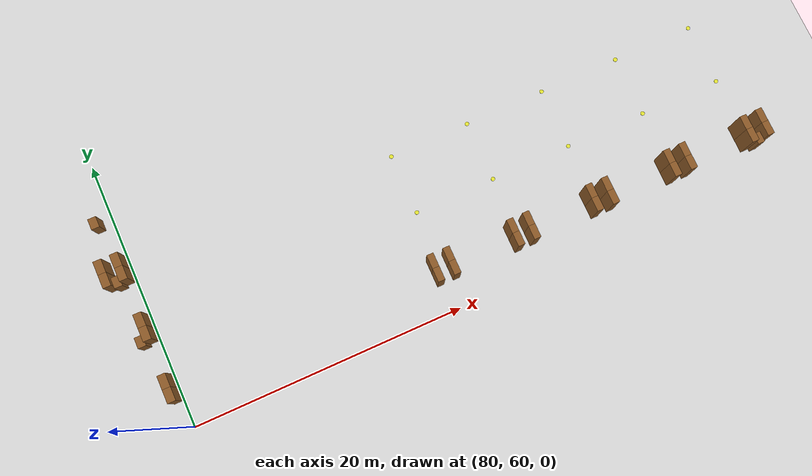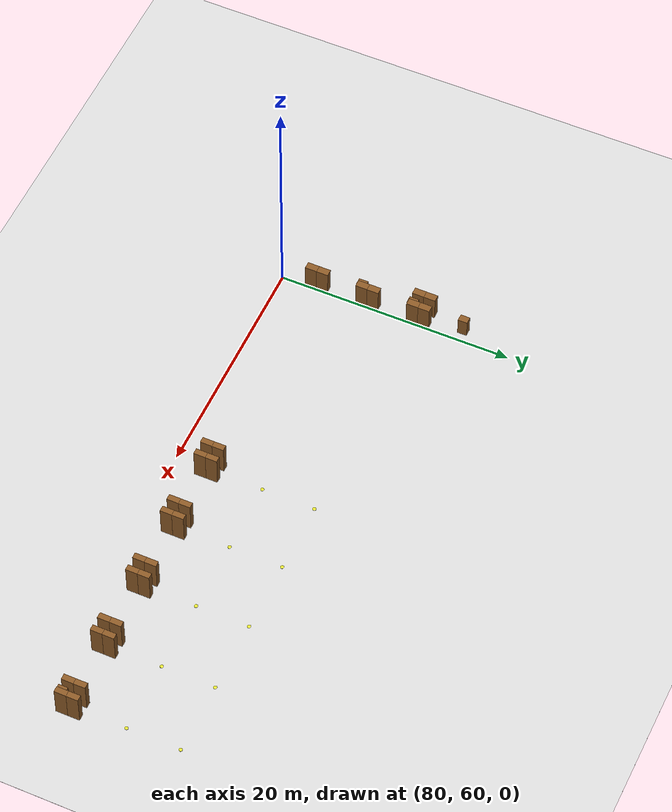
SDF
<sdf version="1.9">
 <world name="realistic_warehouse_150x200m">
  <model name="ground_plane">
   <static>true</static>
   <pose>68.5 102.0 0 0 0 0</pose>
   <link name="ground_link">
    <visual name="ground_visual">
     <geometry><box><size>127.0 194.0 0.01</size></box></geometry>
     <material><ambient>0.85 0.85 0.85 1.0</ambient><diffuse>0.85 0.85 0.85 1.0</diffuse></material>
    </visual>
    <collision name="ground_visual_collision">
     <geometry><box><size>127.0 194.0 0.01</size></box></geometry>
    </collision>
    <collision name="ground_collision">
     <geometry><plane><normal>0 0 1</normal><size>127.0 194.0</size></plane></geometry>
    </collision>
   </link>
  </model>
  <model name="rack_Zone_H_A4_S0_1401">
   <static>true</static>
   <pose>79.6 62.5 1.1 0 0 0</pose>
   <link name="rack_Zone_H_A4_S0_1401_link">
    <visual name="rack_Zone_H_A4_S0_1401_vis">
     <geometry><box><size>0.6 1.0 2.2</size></box></geometry>
     <material><ambient>0.55 0.35 0.15 1.0</ambient><diffuse>0.55 0.35 0.15 1.0</diffuse></material>
    </visual>
    <collision name="rack_Zone_H_A4_S0_1401_vis_collision">
     <geometry><box><size>0.6 1.0 2.2</size></box></geometry>
    </collision>
   </link>
  </model>
  <model name="rack_Zone_H_A4_S0_1402">
   <static>true</static>
   <pose>79.6 63.5 1.1 0 0 0</pose>
   <link name="rack_Zone_H_A4_S0_1402_link">
    <visual name="rack_Zone_H_A4_S0_1402_vis">
     <geometry><box><size>0.6 1.0 2.2</size></box></geometry>
     <material><ambient>0.55 0.35 0.15 1.0</ambient><diffuse>0.55 0.35 0.15 1.0</diffuse></material>
    </visual>
    <collision name="rack_Zone_H_A4_S0_1402_vis_collision">
     <geometry><box><size>0.6 1.0 2.2</size></box></geometry>
    </collision>
   </link>
  </model>
  <model name="rack_Zone_H_A4_S1_1406">
   <static>true</static>
   <pose>79.6 67.0 1.1 0 0 0</pose>
   <link name="rack_Zone_H_A4_S1_1406_link">
    <visual name="rack_Zone_H_A4_S1_1406_vis">
     <geometry><box><size>0.6 1.0 2.2</size></box></geometry>
     <material><ambient>0.55 0.35 0.15 1.0</ambient><diffuse>0.55 0.35 0.15 1.0</diffuse></material>
    </visual>
    <collision name="rack_Zone_H_A4_S1_1406_vis_collision">
     <geometry><box><size>0.6 1.0 2.2</size></box></geometry>
    </collision>
   </link>
  </model>
  <model name="rack_Zone_H_A4_S1_1407">
   <static>true</static>
   <pose>79.6 68.0 1.1 0 0 0</pose>
   <link name="rack_Zone_H_A4_S1_1407_link">
    <visual name="rack_Zone_H_A4_S1_1407_vis">
     <geometry><box><size>0.6 1.0 2.2</size></box></geometry>
     <material><ambient>0.55 0.35 0.15 1.0</ambient><diffuse>0.55 0.35 0.15 1.0</diffuse></material>
    </visual>
    <collision name="rack_Zone_H_A4_S1_1407_vis_collision">
     <geometry><box><size>0.6 1.0 2.2</size></box></geometry>
    </collision>
   </link>
  </model>
  <model name="rack_Zone_H_A4_S1_1408">
   <static>true</static>
   <pose>79.0 66.7 0.8250000000000001 0 0 0</pose>
   <link name="rack_Zone_H_A4_S1_1408_link">
    <visual name="rack_Zone_H_A4_S1_1408_vis">
     <geometry><box><size>0.6 0.8 1.6500000000000001</size></box></geometry>
     <material><ambient>0.55 0.35 0.15 1.0</ambient><diffuse>0.55 0.35 0.15 1.0</diffuse></material>
    </visual>
    <collision name="rack_Zone_H_A4_S1_1408_vis_collision">
     <geometry><box><size>0.6 0.8 1.6500000000000001</size></box></geometry>
    </collision>
   </link>
  </model>
  <model name="rack_Zone_H_A4_S2_1409">
   <static>true</static>
   <pose>78.4 71.5 1.1 0 0 0</pose>
   <link name="rack_Zone_H_A4_S2_1409_link">
    <visual name="rack_Zone_H_A4_S2_1409_vis">
     <geometry><box><size>0.6 1.0 2.2</size></box></geometry>
     <material><ambient>0.55 0.35 0.15 1.0</ambient><diffuse>0.55 0.35 0.15 1.0</diffuse></material>
    </visual>
    <collision name="rack_Zone_H_A4_S2_1409_vis_collision">
     <geometry><box><size>0.6 1.0 2.2</size></box></geometry>
    </collision>
   </link>
  </model>
  <model name="rack_Zone_H_A4_S2_1410">
   <static>true</static>
   <pose>78.4 72.5 1.1 0 0 0</pose>
   <link name="rack_Zone_H_A4_S2_1410_link">
    <visual name="rack_Zone_H_A4_S2_1410_vis">
     <geometry><box><size>0.6 1.0 2.2</size></box></geometry>
     <material><ambient>0.55 0.35 0.15 1.0</ambient><diffuse>0.55 0.35 0.15 1.0</diffuse></material>
    </visual>
    <collision name="rack_Zone_H_A4_S2_1410_vis_collision">
     <geometry><box><size>0.6 1.0 2.2</size></box></geometry>
    </collision>
   </link>
  </model>
  <model name="rack_Zone_H_A4_S2_1411">
   <static>true</static>
   <pose>79.6 71.5 1.1 0 0 0</pose>
   <link name="rack_Zone_H_A4_S2_1411_link">
    <visual name="rack_Zone_H_A4_S2_1411_vis">
     <geometry><box><size>0.6 1.0 2.2</size></box></geometry>
     <material><ambient>0.55 0.35 0.15 1.0</ambient><diffuse>0.55 0.35 0.15 1.0</diffuse></material>
    </visual>
    <collision name="rack_Zone_H_A4_S2_1411_vis_collision">
     <geometry><box><size>0.6 1.0 2.2</size></box></geometry>
    </collision>
   </link>
  </model>
  <model name="rack_Zone_H_A4_S2_1412">
   <static>true</static>
   <pose>79.6 72.5 1.1 0 0 0</pose>
   <link name="rack_Zone_H_A4_S2_1412_link">
    <visual name="rack_Zone_H_A4_S2_1412_vis">
     <geometry><box><size>0.6 1.0 2.2</size></box></geometry>
     <material><ambient>0.55 0.35 0.15 1.0</ambient><diffuse>0.55 0.35 0.15 1.0</diffuse></material>
    </visual>
    <collision name="rack_Zone_H_A4_S2_1412_vis_collision">
     <geometry><box><size>0.6 1.0 2.2</size></box></geometry>
    </collision>
   </link>
  </model>
  <model name="rack_Zone_H_A4_S2_1413">
   <static>true</static>
   <pose>79.0 71.2 0.8250000000000001 0 0 0</pose>
   <link name="rack_Zone_H_A4_S2_1413_link">
    <visual name="rack_Zone_H_A4_S2_1413_vis">
     <geometry><box><size>0.6 0.8 1.6500000000000001</size></box></geometry>
     <material><ambient>0.55 0.35 0.15 1.0</ambient><diffuse>0.55 0.35 0.15 1.0</diffuse></material>
    </visual>
    <collision name="rack_Zone_H_A4_S2_1413_vis_collision">
     <geometry><box><size>0.6 0.8 1.6500000000000001</size></box></geometry>
    </collision>
   </link>
  </model>
  <model name="rack_Zone_H_A4_S3_1418">
   <static>true</static>
   <pose>79.0 75.7 0.8250000000000001 0 0 0</pose>
   <link name="rack_Zone_H_A4_S3_1418_link">
    <visual name="rack_Zone_H_A4_S3_1418_vis">
     <geometry><box><size>0.6 0.8 1.6500000000000001</size></box></geometry>
     <material><ambient>0.55 0.35 0.15 1.0</ambient><diffuse>0.55 0.35 0.15 1.0</diffuse></material>
    </visual>
    <collision name="rack_Zone_H_A4_S3_1418_vis_collision">
     <geometry><box><size>0.6 0.8 1.6500000000000001</size></box></geometry>
    </collision>
   </link>
  </model>
  <model name="rack_Zone_I_A0_S0_1448">
   <static>true</static>
   <pose>99.4 62.5 1.4 0 0 0</pose>
   <link name="rack_Zone_I_A0_S0_1448_link">
    <visual name="rack_Zone_I_A0_S0_1448_vis">
     <geometry><box><size>0.5 1.0 2.8</size></box></geometry>
     <material><ambient>0.55 0.35 0.15 1.0</ambient><diffuse>0.55 0.35 0.15 1.0</diffuse></material>
    </visual>
    <collision name="rack_Zone_I_A0_S0_1448_vis_collision">
     <geometry><box><size>0.5 1.0 2.8</size></box></geometry>
    </collision>
   </link>
  </model>
  <model name="rack_Zone_I_A0_S0_1449">
   <static>true</static>
   <pose>99.4 63.5 1.4 0 0 0</pose>
   <link name="rack_Zone_I_A0_S0_1449_link">
    <visual name="rack_Zone_I_A0_S0_1449_vis">
     <geometry><box><size>0.5 1.0 2.8</size></box></geometry>
     <material><ambient>0.55 0.35 0.15 1.0</ambient><diffuse>0.55 0.35 0.15 1.0</diffuse></material>
    </visual>
    <collision name="rack_Zone_I_A0_S0_1449_vis_collision">
     <geometry><box><size>0.5 1.0 2.8</size></box></geometry>
    </collision>
   </link>
  </model>
  <model name="rack_Zone_I_A0_S0_1450">
   <static>true</static>
   <pose>100.6 62.5 1.4 0 0 0</pose>
   <link name="rack_Zone_I_A0_S0_1450_link">
    <visual name="rack_Zone_I_A0_S0_1450_vis">
     <geometry><box><size>0.5 1.0 2.8</size></box></geometry>
     <material><ambient>0.55 0.35 0.15 1.0</ambient><diffuse>0.55 0.35 0.15 1.0</diffuse></material>
    </visual>
    <collision name="rack_Zone_I_A0_S0_1450_vis_collision">
     <geometry><box><size>0.5 1.0 2.8</size></box></geometry>
    </collision>
   </link>
  </model>
  <model name="rack_Zone_I_A0_S0_1451">
   <static>true</static>
   <pose>100.6 63.5 1.4 0 0 0</pose>
   <link name="rack_Zone_I_A0_S0_1451_link">
    <visual name="rack_Zone_I_A0_S0_1451_vis">
     <geometry><box><size>0.5 1.0 2.8</size></box></geometry>
     <material><ambient>0.55 0.35 0.15 1.0</ambient><diffuse>0.55 0.35 0.15 1.0</diffuse></material>
    </visual>
    <collision name="rack_Zone_I_A0_S0_1451_vis_collision">
     <geometry><box><size>0.5 1.0 2.8</size></box></geometry>
    </collision>
   </link>
  </model>
  <model name="cross_Zone_I_A0_S1_1453">
   <static>true</static>
   <pose>100.0 67.5 0.01 0 0 0</pose>
   <link name="cross_Zone_I_A0_S1_1453_link">
    <visual name="cross_Zone_I_A0_S1_1453_vis">
     <geometry><cylinder><radius>0.15</radius><length>0.02</length></cylinder></geometry>
     <material><ambient>0.9 0.9 0.2 1.0</ambient><diffuse>0.9 0.9 0.2 1.0</diffuse></material>
    </visual>
    <collision name="cross_Zone_I_A0_S1_1453_vis_collision">
     <geometry><cylinder><radius>0.15</radius><length>0.02</length></cylinder></geometry>
    </collision>
   </link>
  </model>
  <model name="gap_Zone_I_A0_S2_1454">
   <static>true</static>
   <pose>100.0 72.0 0.01 0 0 0</pose>
   <link name="gap_Zone_I_A0_S2_1454_link">
    <visual name="gap_Zone_I_A0_S2_1454_vis">
     <geometry><cylinder><radius>0.15</radius><length>0.02</length></cylinder></geometry>
     <material><ambient>0.9 0.9 0.2 1.0</ambient><diffuse>0.9 0.9 0.2 1.0</diffuse></material>
    </visual>
    <collision name="gap_Zone_I_A0_S2_1454_vis_collision">
     <geometry><cylinder><radius>0.15</radius><length>0.02</length></cylinder></geometry>
    </collision>
   </link>
  </model>
  <model name="rack_Zone_I_A1_S0_1468">
   <static>true</static>
   <pose>105.4 62.5 1.4 0 0 0</pose>
   <link name="rack_Zone_I_A1_S0_1468_link">
    <visual name="rack_Zone_I_A1_S0_1468_vis">
     <geometry><box><size>0.5 1.0 2.8</size></box></geometry>
     <material><ambient>0.55 0.35 0.15 1.0</ambient><diffuse>0.55 0.35 0.15 1.0</diffuse></material>
    </visual>
    <collision name="rack_Zone_I_A1_S0_1468_vis_collision">
     <geometry><box><size>0.5 1.0 2.8</size></box></geometry>
    </collision>
   </link>
  </model>
  <model name="rack_Zone_I_A1_S0_1469">
   <static>true</static>
   <pose>105.4 63.5 1.4 0 0 0</pose>
   <link name="rack_Zone_I_A1_S0_1469_link">
    <visual name="rack_Zone_I_A1_S0_1469_vis">
     <geometry><box><size>0.5 1.0 2.8</size></box></geometry>
     <material><ambient>0.55 0.35 0.15 1.0</ambient><diffuse>0.55 0.35 0.15 1.0</diffuse></material>
    </visual>
    <collision name="rack_Zone_I_A1_S0_1469_vis_collision">
     <geometry><box><size>0.5 1.0 2.8</size></box></geometry>
    </collision>
   </link>
  </model>
  <model name="rack_Zone_I_A1_S0_1470">
   <static>true</static>
   <pose>106.6 62.5 1.4 0 0 0</pose>
   <link name="rack_Zone_I_A1_S0_1470_link">
    <visual name="rack_Zone_I_A1_S0_1470_vis">
     <geometry><box><size>0.5 1.0 2.8</size></box></geometry>
     <material><ambient>0.55 0.35 0.15 1.0</ambient><diffuse>0.55 0.35 0.15 1.0</diffuse></material>
    </visual>
    <collision name="rack_Zone_I_A1_S0_1470_vis_collision">
     <geometry><box><size>0.5 1.0 2.8</size></box></geometry>
    </collision>
   </link>
  </model>
  <model name="rack_Zone_I_A1_S0_1471">
   <static>true</static>
   <pose>106.6 63.5 1.4 0 0 0</pose>
   <link name="rack_Zone_I_A1_S0_1471_link">
    <visual name="rack_Zone_I_A1_S0_1471_vis">
     <geometry><box><size>0.5 1.0 2.8</size></box></geometry>
     <material><ambient>0.55 0.35 0.15 1.0</ambient><diffuse>0.55 0.35 0.15 1.0</diffuse></material>
    </visual>
    <collision name="rack_Zone_I_A1_S0_1471_vis_collision">
     <geometry><box><size>0.5 1.0 2.8</size></box></geometry>
    </collision>
   </link>
  </model>
  <model name="cross_Zone_I_A1_S1_1473">
   <static>true</static>
   <pose>106.0 67.5 0.01 0 0 0</pose>
   <link name="cross_Zone_I_A1_S1_1473_link">
    <visual name="cross_Zone_I_A1_S1_1473_vis">
     <geometry><cylinder><radius>0.15</radius><length>0.02</length></cylinder></geometry>
     <material><ambient>0.9 0.9 0.2 1.0</ambient><diffuse>0.9 0.9 0.2 1.0</diffuse></material>
    </visual>
    <collision name="cross_Zone_I_A1_S1_1473_vis_collision">
     <geometry><cylinder><radius>0.15</radius><length>0.02</length></cylinder></geometry>
    </collision>
   </link>
  </model>
  <model name="gap_Zone_I_A1_S2_1474">
   <static>true</static>
   <pose>106.0 72.0 0.01 0 0 0</pose>
   <link name="gap_Zone_I_A1_S2_1474_link">
    <visual name="gap_Zone_I_A1_S2_1474_vis">
     <geometry><cylinder><radius>0.15</radius><length>0.02</length></cylinder></geometry>
     <material><ambient>0.9 0.9 0.2 1.0</ambient><diffuse>0.9 0.9 0.2 1.0</diffuse></material>
    </visual>
    <collision name="gap_Zone_I_A1_S2_1474_vis_collision">
     <geometry><cylinder><radius>0.15</radius><length>0.02</length></cylinder></geometry>
    </collision>
   </link>
  </model>
  <model name="rack_Zone_I_A2_S0_1488">
   <static>true</static>
   <pose>111.4 62.5 1.4 0 0 0</pose>
   <link name="rack_Zone_I_A2_S0_1488_link">
    <visual name="rack_Zone_I_A2_S0_1488_vis">
     <geometry><box><size>0.5 1.0 2.8</size></box></geometry>
     <material><ambient>0.55 0.35 0.15 1.0</ambient><diffuse>0.55 0.35 0.15 1.0</diffuse></material>
    </visual>
    <collision name="rack_Zone_I_A2_S0_1488_vis_collision">
     <geometry><box><size>0.5 1.0 2.8</size></box></geometry>
    </collision>
   </link>
  </model>
  <model name="rack_Zone_I_A2_S0_1489">
   <static>true</static>
   <pose>111.4 63.5 1.4 0 0 0</pose>
   <link name="rack_Zone_I_A2_S0_1489_link">
    <visual name="rack_Zone_I_A2_S0_1489_vis">
     <geometry><box><size>0.5 1.0 2.8</size></box></geometry>
     <material><ambient>0.55 0.35 0.15 1.0</ambient><diffuse>0.55 0.35 0.15 1.0</diffuse></material>
    </visual>
    <collision name="rack_Zone_I_A2_S0_1489_vis_collision">
     <geometry><box><size>0.5 1.0 2.8</size></box></geometry>
    </collision>
   </link>
  </model>
  <model name="rack_Zone_I_A2_S0_1490">
   <static>true</static>
   <pose>112.6 62.5 1.4 0 0 0</pose>
   <link name="rack_Zone_I_A2_S0_1490_link">
    <visual name="rack_Zone_I_A2_S0_1490_vis">
     <geometry><box><size>0.5 1.0 2.8</size></box></geometry>
     <material><ambient>0.55 0.35 0.15 1.0</ambient><diffuse>0.55 0.35 0.15 1.0</diffuse></material>
    </visual>
    <collision name="rack_Zone_I_A2_S0_1490_vis_collision">
     <geometry><box><size>0.5 1.0 2.8</size></box></geometry>
    </collision>
   </link>
  </model>
  <model name="rack_Zone_I_A2_S0_1491">
   <static>true</static>
   <pose>112.6 63.5 1.4 0 0 0</pose>
   <link name="rack_Zone_I_A2_S0_1491_link">
    <visual name="rack_Zone_I_A2_S0_1491_vis">
     <geometry><box><size>0.5 1.0 2.8</size></box></geometry>
     <material><ambient>0.55 0.35 0.15 1.0</ambient><diffuse>0.55 0.35 0.15 1.0</diffuse></material>
    </visual>
    <collision name="rack_Zone_I_A2_S0_1491_vis_collision">
     <geometry><box><size>0.5 1.0 2.8</size></box></geometry>
    </collision>
   </link>
  </model>
  <model name="cross_Zone_I_A2_S1_1493">
   <static>true</static>
   <pose>112.0 67.5 0.01 0 0 0</pose>
   <link name="cross_Zone_I_A2_S1_1493_link">
    <visual name="cross_Zone_I_A2_S1_1493_vis">
     <geometry><cylinder><radius>0.15</radius><length>0.02</length></cylinder></geometry>
     <material><ambient>0.9 0.9 0.2 1.0</ambient><diffuse>0.9 0.9 0.2 1.0</diffuse></material>
    </visual>
    <collision name="cross_Zone_I_A2_S1_1493_vis_collision">
     <geometry><cylinder><radius>0.15</radius><length>0.02</length></cylinder></geometry>
    </collision>
   </link>
  </model>
  <model name="gap_Zone_I_A2_S2_1494">
   <static>true</static>
   <pose>112.0 72.0 0.01 0 0 0</pose>
   <link name="gap_Zone_I_A2_S2_1494_link">
    <visual name="gap_Zone_I_A2_S2_1494_vis">
     <geometry><cylinder><radius>0.15</radius><length>0.02</length></cylinder></geometry>
     <material><ambient>0.9 0.9 0.2 1.0</ambient><diffuse>0.9 0.9 0.2 1.0</diffuse></material>
    </visual>
    <collision name="gap_Zone_I_A2_S2_1494_vis_collision">
     <geometry><cylinder><radius>0.15</radius><length>0.02</length></cylinder></geometry>
    </collision>
   </link>
  </model>
  <model name="rack_Zone_I_A3_S0_1508">
   <static>true</static>
   <pose>117.4 62.5 1.4 0 0 0</pose>
   <link name="rack_Zone_I_A3_S0_1508_link">
    <visual name="rack_Zone_I_A3_S0_1508_vis">
     <geometry><box><size>0.5 1.0 2.8</size></box></geometry>
     <material><ambient>0.55 0.35 0.15 1.0</ambient><diffuse>0.55 0.35 0.15 1.0</diffuse></material>
    </visual>
    <collision name="rack_Zone_I_A3_S0_1508_vis_collision">
     <geometry><box><size>0.5 1.0 2.8</size></box></geometry>
    </collision>
   </link>
  </model>
  <model name="rack_Zone_I_A3_S0_1509">
   <static>true</static>
   <pose>117.4 63.5 1.4 0 0 0</pose>
   <link name="rack_Zone_I_A3_S0_1509_link">
    <visual name="rack_Zone_I_A3_S0_1509_vis">
     <geometry><box><size>0.5 1.0 2.8</size></box></geometry>
     <material><ambient>0.55 0.35 0.15 1.0</ambient><diffuse>0.55 0.35 0.15 1.0</diffuse></material>
    </visual>
    <collision name="rack_Zone_I_A3_S0_1509_vis_collision">
     <geometry><box><size>0.5 1.0 2.8</size></box></geometry>
    </collision>
   </link>
  </model>
  <model name="rack_Zone_I_A3_S0_1510">
   <static>true</static>
   <pose>118.6 62.5 1.4 0 0 0</pose>
   <link name="rack_Zone_I_A3_S0_1510_link">
    <visual name="rack_Zone_I_A3_S0_1510_vis">
     <geometry><box><size>0.5 1.0 2.8</size></box></geometry>
     <material><ambient>0.55 0.35 0.15 1.0</ambient><diffuse>0.55 0.35 0.15 1.0</diffuse></material>
    </visual>
    <collision name="rack_Zone_I_A3_S0_1510_vis_collision">
     <geometry><box><size>0.5 1.0 2.8</size></box></geometry>
    </collision>
   </link>
  </model>
  <model name="rack_Zone_I_A3_S0_1511">
   <static>true</static>
   <pose>118.6 63.5 1.4 0 0 0</pose>
   <link name="rack_Zone_I_A3_S0_1511_link">
    <visual name="rack_Zone_I_A3_S0_1511_vis">
     <geometry><box><size>0.5 1.0 2.8</size></box></geometry>
     <material><ambient>0.55 0.35 0.15 1.0</ambient><diffuse>0.55 0.35 0.15 1.0</diffuse></material>
    </visual>
    <collision name="rack_Zone_I_A3_S0_1511_vis_collision">
     <geometry><box><size>0.5 1.0 2.8</size></box></geometry>
    </collision>
   </link>
  </model>
  <model name="cross_Zone_I_A3_S1_1513">
   <static>true</static>
   <pose>118.0 67.5 0.01 0 0 0</pose>
   <link name="cross_Zone_I_A3_S1_1513_link">
    <visual name="cross_Zone_I_A3_S1_1513_vis">
     <geometry><cylinder><radius>0.15</radius><length>0.02</length></cylinder></geometry>
     <material><ambient>0.9 0.9 0.2 1.0</ambient><diffuse>0.9 0.9 0.2 1.0</diffuse></material>
    </visual>
    <collision name="cross_Zone_I_A3_S1_1513_vis_collision">
     <geometry><cylinder><radius>0.15</radius><length>0.02</length></cylinder></geometry>
    </collision>
   </link>
  </model>
  <model name="gap_Zone_I_A3_S2_1514">
   <static>true</static>
   <pose>118.0 72.0 0.01 0 0 0</pose>
   <link name="gap_Zone_I_A3_S2_1514_link">
    <visual name="gap_Zone_I_A3_S2_1514_vis">
     <geometry><cylinder><radius>0.15</radius><length>0.02</length></cylinder></geometry>
     <material><ambient>0.9 0.9 0.2 1.0</ambient><diffuse>0.9 0.9 0.2 1.0</diffuse></material>
    </visual>
    <collision name="gap_Zone_I_A3_S2_1514_vis_collision">
     <geometry><cylinder><radius>0.15</radius><length>0.02</length></cylinder></geometry>
    </collision>
   </link>
  </model>
  <model name="rack_Zone_I_A4_S0_1528">
   <static>true</static>
   <pose>123.4 62.5 1.4 0 0 0</pose>
   <link name="rack_Zone_I_A4_S0_1528_link">
    <visual name="rack_Zone_I_A4_S0_1528_vis">
     <geometry><box><size>0.5 1.0 2.8</size></box></geometry>
     <material><ambient>0.55 0.35 0.15 1.0</ambient><diffuse>0.55 0.35 0.15 1.0</diffuse></material>
    </visual>
    <collision name="rack_Zone_I_A4_S0_1528_vis_collision">
     <geometry><box><size>0.5 1.0 2.8</size></box></geometry>
    </collision>
   </link>
  </model>
  <model name="rack_Zone_I_A4_S0_1529">
   <static>true</static>
   <pose>123.4 63.5 1.4 0 0 0</pose>
   <link name="rack_Zone_I_A4_S0_1529_link">
    <visual name="rack_Zone_I_A4_S0_1529_vis">
     <geometry><box><size>0.5 1.0 2.8</size></box></geometry>
     <material><ambient>0.55 0.35 0.15 1.0</ambient><diffuse>0.55 0.35 0.15 1.0</diffuse></material>
    </visual>
    <collision name="rack_Zone_I_A4_S0_1529_vis_collision">
     <geometry><box><size>0.5 1.0 2.8</size></box></geometry>
    </collision>
   </link>
  </model>
  <model name="rack_Zone_I_A4_S0_1530">
   <static>true</static>
   <pose>124.6 62.5 1.4 0 0 0</pose>
   <link name="rack_Zone_I_A4_S0_1530_link">
    <visual name="rack_Zone_I_A4_S0_1530_vis">
     <geometry><box><size>0.5 1.0 2.8</size></box></geometry>
     <material><ambient>0.55 0.35 0.15 1.0</ambient><diffuse>0.55 0.35 0.15 1.0</diffuse></material>
    </visual>
    <collision name="rack_Zone_I_A4_S0_1530_vis_collision">
     <geometry><box><size>0.5 1.0 2.8</size></box></geometry>
    </collision>
   </link>
  </model>
  <model name="rack_Zone_I_A4_S0_1531">
   <static>true</static>
   <pose>124.6 63.5 1.4 0 0 0</pose>
   <link name="rack_Zone_I_A4_S0_1531_link">
    <visual name="rack_Zone_I_A4_S0_1531_vis">
     <geometry><box><size>0.5 1.0 2.8</size></box></geometry>
     <material><ambient>0.55 0.35 0.15 1.0</ambient><diffuse>0.55 0.35 0.15 1.0</diffuse></material>
    </visual>
    <collision name="rack_Zone_I_A4_S0_1531_vis_collision">
     <geometry><box><size>0.5 1.0 2.8</size></box></geometry>
    </collision>
   </link>
  </model>
  <model name="rack_Zone_I_A4_S0_1532">
   <static>true</static>
   <pose>124.0 62.2 1.0499999999999998 0 0 0</pose>
   <link name="rack_Zone_I_A4_S0_1532_link">
    <visual name="rack_Zone_I_A4_S0_1532_vis">
     <geometry><box><size>0.5 0.8 2.0999999999999996</size></box></geometry>
     <material><ambient>0.55 0.35 0.15 1.0</ambient><diffuse>0.55 0.35 0.15 1.0</diffuse></material>
    </visual>
    <collision name="rack_Zone_I_A4_S0_1532_vis_collision">
     <geometry><box><size>0.5 0.8 2.0999999999999996</size></box></geometry>
    </collision>
   </link>
  </model>
  <model name="cross_Zone_I_A4_S1_1533">
   <static>true</static>
   <pose>124.0 67.5 0.01 0 0 0</pose>
   <link name="cross_Zone_I_A4_S1_1533_link">
    <visual name="cross_Zone_I_A4_S1_1533_vis">
     <geometry><cylinder><radius>0.15</radius><length>0.02</length></cylinder></geometry>
     <material><ambient>0.9 0.9 0.2 1.0</ambient><diffuse>0.9 0.9 0.2 1.0</diffuse></material>
    </visual>
    <collision name="cross_Zone_I_A4_S1_1533_vis_collision">
     <geometry><cylinder><radius>0.15</radius><length>0.02</length></cylinder></geometry>
    </collision>
   </link>
  </model>
  <model name="gap_Zone_I_A4_S2_1534">
   <static>true</static>
   <pose>124.0 72.0 0.01 0 0 0</pose>
   <link name="gap_Zone_I_A4_S2_1534_link">
    <visual name="gap_Zone_I_A4_S2_1534_vis">
     <geometry><cylinder><radius>0.15</radius><length>0.02</length></cylinder></geometry>
     <material><ambient>0.9 0.9 0.2 1.0</ambient><diffuse>0.9 0.9 0.2 1.0</diffuse></material>
    </visual>
    <collision name="gap_Zone_I_A4_S2_1534_vis_collision">
     <geometry><cylinder><radius>0.15</radius><length>0.02</length></cylinder></geometry>
    </collision>
   </link>
  </model>
 </world>
</sdf>
